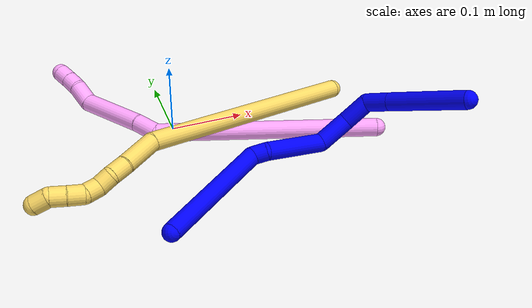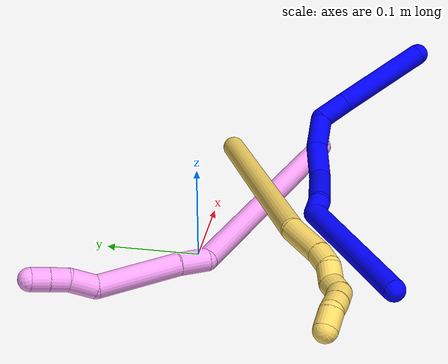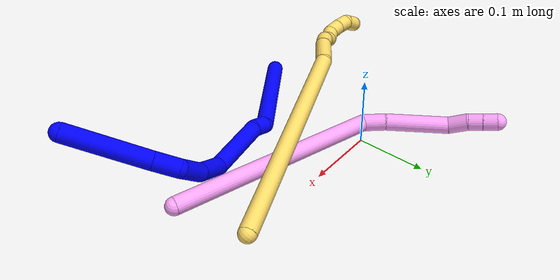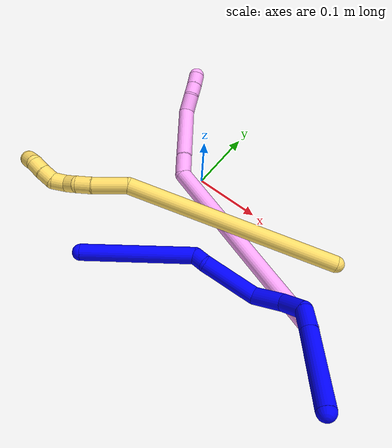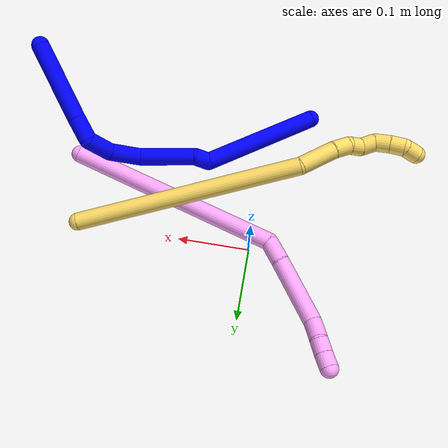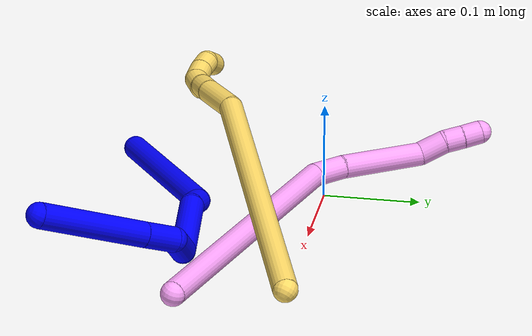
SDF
<sdf version="1.7">
 <world name="default">
  <model name="1">
   <static>0</static>
   <link name="1">
    <collision name="collision-cylinder-e_1_1_4">
     <pose>-0.009358 0.008161 -0.054589 -2.9932 -0.167947 1.69475</pose>
     <geometry><cylinder><radius>0.0125</radius><length>0.111966</length></cylinder></geometry>
     <surface>
      <friction><ode><mu>1.16</mu><mu2>1.16</mu2><slip1>0</slip1><slip2>0</slip2></ode></friction>
      <contact><ode><kp>1e+06</kp><kd>1</kd><max_vel>0</max_vel><min_depth>0.001</min_depth></ode></contact>
     </surface>
    </collision>
    <visual name="visual-cylinder-e_1_1_4">
     <pose>-0.009358 0.008161 -0.054589 -2.9932 -0.167947 1.69475</pose>
     <geometry><cylinder><radius>0.0125</radius><length>0.111966</length></cylinder></geometry>
     <material><ambient>0 0 1 1</ambient></material>
    </visual>
    <collision name="collision-cylinder-e_2_4_5">
     <pose>-0.022154 0.018804 -0.125964 -2.99474 -0.199869 1.87576</pose>
     <geometry><cylinder><radius>0.0125</radius><length>0.034627</length></cylinder></geometry>
     <surface>
      <friction><ode><mu>1.16</mu><mu2>1.16</mu2><slip1>0</slip1><slip2>0</slip2></ode></friction>
      <contact><ode><kp>1e+06</kp><kd>1</kd><max_vel>0</max_vel><min_depth>0.001</min_depth></ode></contact>
     </surface>
    </collision>
    <visual name="visual-cylinder-e_2_4_5">
     <pose>-0.022154 0.018804 -0.125964 -2.99474 -0.199869 1.87576</pose>
     <geometry><cylinder><radius>0.0125</radius><length>0.034627</length></cylinder></geometry>
     <material><ambient>0 0 1 1</ambient></material>
    </visual>
    <collision name="collision-cylinder-e_3_5_6">
     <pose>-0.036985 0.013668 -0.155525 2.60381 -0.653663 -1.77648</pose>
     <geometry><cylinder><radius>0.0125</radius><length>0.037474</length></cylinder></geometry>
     <surface>
      <friction><ode><mu>1.16</mu><mu2>1.16</mu2><slip1>0</slip1><slip2>0</slip2></ode></friction>
      <contact><ode><kp>1e+06</kp><kd>1</kd><max_vel>0</max_vel><min_depth>0.001</min_depth></ode></contact>
     </surface>
    </collision>
    <visual name="visual-cylinder-e_3_5_6">
     <pose>-0.036985 0.013668 -0.155525 2.60381 -0.653663 -1.77648</pose>
     <geometry><cylinder><radius>0.0125</radius><length>0.037474</length></cylinder></geometry>
     <material><ambient>0 0 1 1</ambient></material>
    </visual>
    <collision name="collision-cylinder-e_4_6_7">
     <pose>-0.067382 -0.001504 -0.178488 2.50366 -0.982278 -2.03529</pose>
     <geometry><cylinder><radius>0.0125</radius><length>0.045693</length></cylinder></geometry>
     <surface>
      <friction><ode><mu>1.16</mu><mu2>1.16</mu2><slip1>0</slip1><slip2>0</slip2></ode></friction>
      <contact><ode><kp>1e+06</kp><kd>1</kd><max_vel>0</max_vel><min_depth>0.001</min_depth></ode></contact>
     </surface>
    </collision>
    <visual name="visual-cylinder-e_4_6_7">
     <pose>-0.067382 -0.001504 -0.178488 2.50366 -0.982278 -2.03529</pose>
     <geometry><cylinder><radius>0.0125</radius><length>0.045693</length></cylinder></geometry>
     <material><ambient>0 0 1 1</ambient></material>
    </visual>
    <collision name="collision-cylinder-e_5_7_8">
     <pose>-0.124909 0.000939 -0.198651 -2.35508 -1.21945 2.0697</pose>
     <geometry><cylinder><radius>0.0125</radius><length>0.082062</length></cylinder></geometry>
     <surface>
      <friction><ode><mu>1.16</mu><mu2>1.16</mu2><slip1>0</slip1><slip2>0</slip2></ode></friction>
      <contact><ode><kp>1e+06</kp><kd>1</kd><max_vel>0</max_vel><min_depth>0.001</min_depth></ode></contact>
     </surface>
    </collision>
    <visual name="visual-cylinder-e_5_7_8">
     <pose>-0.124909 0.000939 -0.198651 -2.35508 -1.21945 2.0697</pose>
     <geometry><cylinder><radius>0.0125</radius><length>0.082062</length></cylinder></geometry>
     <material><ambient>0 0 1 1</ambient></material>
    </visual>
    <collision name="collision-cylinder-e_6_8_9">
     <pose>-0.171632 0.01152 -0.214552 -3.04332 -0.942571 2.94918</pose>
     <geometry><cylinder><radius>0.0125</radius><length>0.020268</length></cylinder></geometry>
     <surface>
      <friction><ode><mu>1.16</mu><mu2>1.16</mu2><slip1>0</slip1><slip2>0</slip2></ode></friction>
      <contact><ode><kp>1e+06</kp><kd>1</kd><max_vel>0</max_vel><min_depth>0.001</min_depth></ode></contact>
     </surface>
    </collision>
    <visual name="visual-cylinder-e_6_8_9">
     <pose>-0.171632 0.01152 -0.214552 -3.04332 -0.942571 2.94918</pose>
     <geometry><cylinder><radius>0.0125</radius><length>0.020268</length></cylinder></geometry>
     <material><ambient>0 0 1 1</ambient></material>
    </visual>
    <collision name="collision-cylinder-e_7_9_2">
     <pose>-0.261955 -0.003874 -0.213483 1.15809 -1.3615 -0.973971</pose>
     <geometry><cylinder><radius>0.0125</radius><length>0.16791</length></cylinder></geometry>
     <surface>
      <friction><ode><mu>1.16</mu><mu2>1.16</mu2><slip1>0</slip1><slip2>0</slip2></ode></friction>
      <contact><ode><kp>1e+06</kp><kd>1</kd><max_vel>0</max_vel><min_depth>0.001</min_depth></ode></contact>
     </surface>
    </collision>
    <visual name="visual-cylinder-e_7_9_2">
     <pose>-0.261955 -0.003874 -0.213483 1.15809 -1.3615 -0.973971</pose>
     <geometry><cylinder><radius>0.0125</radius><length>0.16791</length></cylinder></geometry>
     <material><ambient>0 0 1 1</ambient></material>
    </visual>
    <collision name="collision-sphere-2">
     <pose>-0.344077 -0.019852 -0.206487 0 -0 0</pose>
     <geometry><sphere><radius>0.0125</radius></sphere></geometry>
     <surface>
      <friction><ode><mu>1.16</mu><mu2>1.16</mu2><slip1>0</slip1><slip2>0</slip2></ode></friction>
      <contact><ode><kp>1e+06</kp><kd>1</kd><max_vel>0</max_vel><min_depth>0.001</min_depth></ode></contact>
     </surface>
    </collision>
    <visual name="visual-sphere-2">
     <pose>-0.344077 -0.019852 -0.206487 0 -0 0</pose>
     <geometry><sphere><radius>0.0125</radius></sphere></geometry>
     <material><ambient>0 0 1 1</ambient></material>
    </visual>
    <collision name="collision-sphere-9">
     <pose>-0.179832 0.012105 -0.22048 0 -0 0</pose>
     <geometry><sphere><radius>0.0125</radius></sphere></geometry>
     <surface>
      <friction><ode><mu>1.16</mu><mu2>1.16</mu2><slip1>0</slip1><slip2>0</slip2></ode></friction>
      <contact><ode><kp>1e+06</kp><kd>1</kd><max_vel>0</max_vel><min_depth>0.001</min_depth></ode></contact>
     </surface>
    </collision>
    <visual name="visual-sphere-9">
     <pose>-0.179832 0.012105 -0.22048 0 -0 0</pose>
     <geometry><sphere><radius>0.0125</radius></sphere></geometry>
     <material><ambient>0 0 1 1</ambient></material>
    </visual>
    <collision name="collision-sphere-4">
     <pose>-0.018716 0.016322 -0.109178 0 -0 0</pose>
     <geometry><sphere><radius>0.0125</radius></sphere></geometry>
     <surface>
      <friction><ode><mu>1.16</mu><mu2>1.16</mu2><slip1>0</slip1><slip2>0</slip2></ode></friction>
      <contact><ode><kp>1e+06</kp><kd>1</kd><max_vel>0</max_vel><min_depth>0.001</min_depth></ode></contact>
     </surface>
    </collision>
    <visual name="visual-sphere-4">
     <pose>-0.018716 0.016322 -0.109178 0 -0 0</pose>
     <geometry><sphere><radius>0.0125</radius></sphere></geometry>
     <material><ambient>0 0 1 1</ambient></material>
    </visual>
    <collision name="collision-sphere-1">
     <geometry><sphere><radius>0.0125</radius></sphere></geometry>
     <surface>
      <friction><ode><mu>1.16</mu><mu2>1.16</mu2><slip1>0</slip1><slip2>0</slip2></ode></friction>
      <contact><ode><kp>1e+06</kp><kd>1</kd><max_vel>0</max_vel><min_depth>0.001</min_depth></ode></contact>
     </surface>
    </collision>
    <visual name="visual-sphere-1">
     <geometry><sphere><radius>0.0125</radius></sphere></geometry>
     <material><ambient>0 0 1 1</ambient></material>
    </visual>
    <collision name="collision-sphere-8">
     <pose>-0.163433 0.010936 -0.208625 0 -0 0</pose>
     <geometry><sphere><radius>0.0125</radius></sphere></geometry>
     <surface>
      <friction><ode><mu>1.16</mu><mu2>1.16</mu2><slip1>0</slip1><slip2>0</slip2></ode></friction>
      <contact><ode><kp>1e+06</kp><kd>1</kd><max_vel>0</max_vel><min_depth>0.001</min_depth></ode></contact>
     </surface>
    </collision>
    <visual name="visual-sphere-8">
     <pose>-0.163433 0.010936 -0.208625 0 -0 0</pose>
     <geometry><sphere><radius>0.0125</radius></sphere></geometry>
     <material><ambient>0 0 1 1</ambient></material>
    </visual>
    <collision name="collision-sphere-5">
     <pose>-0.025591 0.021287 -0.14275 0 -0 0</pose>
     <geometry><sphere><radius>0.0125</radius></sphere></geometry>
     <surface>
      <friction><ode><mu>1.16</mu><mu2>1.16</mu2><slip1>0</slip1><slip2>0</slip2></ode></friction>
      <contact><ode><kp>1e+06</kp><kd>1</kd><max_vel>0</max_vel><min_depth>0.001</min_depth></ode></contact>
     </surface>
    </collision>
    <visual name="visual-sphere-5">
     <pose>-0.025591 0.021287 -0.14275 0 -0 0</pose>
     <geometry><sphere><radius>0.0125</radius></sphere></geometry>
     <material><ambient>0 0 1 1</ambient></material>
    </visual>
    <collision name="collision-sphere-6">
     <pose>-0.048379 0.006049 -0.1683 0 -0 0</pose>
     <geometry><sphere><radius>0.0125</radius></sphere></geometry>
     <surface>
      <friction><ode><mu>1.16</mu><mu2>1.16</mu2><slip1>0</slip1><slip2>0</slip2></ode></friction>
      <contact><ode><kp>1e+06</kp><kd>1</kd><max_vel>0</max_vel><min_depth>0.001</min_depth></ode></contact>
     </surface>
    </collision>
    <visual name="visual-sphere-6">
     <pose>-0.048379 0.006049 -0.1683 0 -0 0</pose>
     <geometry><sphere><radius>0.0125</radius></sphere></geometry>
     <material><ambient>0 0 1 1</ambient></material>
    </visual>
    <collision name="collision-sphere-7">
     <pose>-0.086384 -0.009057 -0.188677 0 -0 0</pose>
     <geometry><sphere><radius>0.0125</radius></sphere></geometry>
     <surface>
      <friction><ode><mu>1.16</mu><mu2>1.16</mu2><slip1>0</slip1><slip2>0</slip2></ode></friction>
      <contact><ode><kp>1e+06</kp><kd>1</kd><max_vel>0</max_vel><min_depth>0.001</min_depth></ode></contact>
     </surface>
    </collision>
    <visual name="visual-sphere-7">
     <pose>-0.086384 -0.009057 -0.188677 0 -0 0</pose>
     <geometry><sphere><radius>0.0125</radius></sphere></geometry>
     <material><ambient>0 0 1 1</ambient></material>
    </visual>
    <inertial>
     <pose>-0.127987 0.003337 -0.161908 0 -0 0</pose>
     <mass>0.5</mass>
     <inertia>
      <ixx>5.1e-05</ixx>
      <ixy>0</ixy>
      <ixz>0</ixz>
      <iyy>0.000523</iyy>
      <iyz>0</iyz>
      <izz>0.000508</izz>
     </inertia>
    </inertial>
   </link>
   <pose>0.330122 -0.209159 0.112748 1.01171 0.072037 0.451867</pose>
  </model>
  <model name="4">
   <static>0</static>
   <link name="4">
    <collision name="collision-cylinder-e_1_1_4">
     <pose>-0.142194 0.053579 0.007499 -1.43174 -1.20723 1.08037</pose>
     <geometry><cylinder><radius>0.0125</radius><length>0.304277</length></cylinder></geometry>
     <surface>
      <friction><ode><mu>1.16</mu><mu2>1.16</mu2><slip1>0</slip1><slip2>0</slip2></ode></friction>
      <contact><ode><kp>1e+06</kp><kd>1</kd><max_vel>0</max_vel><min_depth>0.001</min_depth></ode></contact>
     </surface>
    </collision>
    <visual name="visual-cylinder-e_1_1_4">
     <pose>-0.142194 0.053579 0.007499 -1.43174 -1.20723 1.08037</pose>
     <geometry><cylinder><radius>0.0125</radius><length>0.304277</length></cylinder></geometry>
     <material><ambient>1 0.65098 0.996078 1</ambient></material>
    </visual>
    <collision name="collision-cylinder-e_2_4_5">
     <pose>-0.293188 0.120252 0.019889 -1.21328 -0.561946 0.395317</pose>
     <geometry><cylinder><radius>0.0125</radius><length>0.033032</length></cylinder></geometry>
     <surface>
      <friction><ode><mu>1.16</mu><mu2>1.16</mu2><slip1>0</slip1><slip2>0</slip2></ode></friction>
      <contact><ode><kp>1e+06</kp><kd>1</kd><max_vel>0</max_vel><min_depth>0.001</min_depth></ode></contact>
     </surface>
    </collision>
    <visual name="visual-cylinder-e_2_4_5">
     <pose>-0.293188 0.120252 0.019889 -1.21328 -0.561946 0.395317</pose>
     <geometry><cylinder><radius>0.0125</radius><length>0.033032</length></cylinder></geometry>
     <material><ambient>1 0.65098 0.996078 1</ambient></material>
    </visual>
    <collision name="collision-cylinder-e_3_5_6">
     <pose>-0.326342 0.171804 0.033447 -1.34913 -0.553363 0.446607</pose>
     <geometry><cylinder><radius>0.0125</radius><length>0.092679</length></cylinder></geometry>
     <surface>
      <friction><ode><mu>1.16</mu><mu2>1.16</mu2><slip1>0</slip1><slip2>0</slip2></ode></friction>
      <contact><ode><kp>1e+06</kp><kd>1</kd><max_vel>0</max_vel><min_depth>0.001</min_depth></ode></contact>
     </surface>
    </collision>
    <visual name="visual-cylinder-e_3_5_6">
     <pose>-0.326342 0.171804 0.033447 -1.34913 -0.553363 0.446607</pose>
     <geometry><cylinder><radius>0.0125</radius><length>0.092679</length></cylinder></geometry>
     <material><ambient>1 0.65098 0.996078 1</ambient></material>
    </visual>
    <collision name="collision-cylinder-e_4_6_7">
     <pose>-0.355184 0.220983 0.05135 -0.859674 -0.307114 0.141668</pose>
     <geometry><cylinder><radius>0.0125</radius><length>0.029689</length></cylinder></geometry>
     <surface>
      <friction><ode><mu>1.16</mu><mu2>1.16</mu2><slip1>0</slip1><slip2>0</slip2></ode></friction>
      <contact><ode><kp>1e+06</kp><kd>1</kd><max_vel>0</max_vel><min_depth>0.001</min_depth></ode></contact>
     </surface>
    </collision>
    <visual name="visual-cylinder-e_4_6_7">
     <pose>-0.355184 0.220983 0.05135 -0.859674 -0.307114 0.141668</pose>
     <geometry><cylinder><radius>0.0125</radius><length>0.029689</length></cylinder></geometry>
     <material><ambient>1 0.65098 0.996078 1</ambient></material>
    </visual>
    <collision name="collision-cylinder-e_5_7_8">
     <pose>-0.363149 0.240262 0.064703 -1.1224 -0.35105 0.222056</pose>
     <geometry><cylinder><radius>0.0125</radius><length>0.020229</length></cylinder></geometry>
     <surface>
      <friction><ode><mu>1.16</mu><mu2>1.16</mu2><slip1>0</slip1><slip2>0</slip2></ode></friction>
      <contact><ode><kp>1e+06</kp><kd>1</kd><max_vel>0</max_vel><min_depth>0.001</min_depth></ode></contact>
     </surface>
    </collision>
    <visual name="visual-cylinder-e_5_7_8">
     <pose>-0.363149 0.240262 0.064703 -1.1224 -0.35105 0.222056</pose>
     <geometry><cylinder><radius>0.0125</radius><length>0.020229</length></cylinder></geometry>
     <material><ambient>1 0.65098 0.996078 1</ambient></material>
    </visual>
    <collision name="collision-cylinder-e_6_8_2">
     <pose>-0.370518 0.257131 0.072914 -1.11304 -0.397618 0.249373</pose>
     <geometry><cylinder><radius>0.0125</radius><length>0.020094</length></cylinder></geometry>
     <surface>
      <friction><ode><mu>1.16</mu><mu2>1.16</mu2><slip1>0</slip1><slip2>0</slip2></ode></friction>
      <contact><ode><kp>1e+06</kp><kd>1</kd><max_vel>0</max_vel><min_depth>0.001</min_depth></ode></contact>
     </surface>
    </collision>
    <visual name="visual-cylinder-e_6_8_2">
     <pose>-0.370518 0.257131 0.072914 -1.11304 -0.397618 0.249373</pose>
     <geometry><cylinder><radius>0.0125</radius><length>0.020094</length></cylinder></geometry>
     <material><ambient>1 0.65098 0.996078 1</ambient></material>
    </visual>
    <collision name="collision-sphere-2">
     <pose>-0.374409 0.26544 0.077008 0 -0 0</pose>
     <geometry><sphere><radius>0.0125</radius></sphere></geometry>
     <surface>
      <friction><ode><mu>1.16</mu><mu2>1.16</mu2><slip1>0</slip1><slip2>0</slip2></ode></friction>
      <contact><ode><kp>1e+06</kp><kd>1</kd><max_vel>0</max_vel><min_depth>0.001</min_depth></ode></contact>
     </surface>
    </collision>
    <visual name="visual-sphere-2">
     <pose>-0.374409 0.26544 0.077008 0 -0 0</pose>
     <geometry><sphere><radius>0.0125</radius></sphere></geometry>
     <material><ambient>1 0.65098 0.996078 1</ambient></material>
    </visual>
    <collision name="collision-sphere-4">
     <pose>-0.284388 0.107159 0.014998 0 -0 0</pose>
     <geometry><sphere><radius>0.0125</radius></sphere></geometry>
     <surface>
      <friction><ode><mu>1.16</mu><mu2>1.16</mu2><slip1>0</slip1><slip2>0</slip2></ode></friction>
      <contact><ode><kp>1e+06</kp><kd>1</kd><max_vel>0</max_vel><min_depth>0.001</min_depth></ode></contact>
     </surface>
    </collision>
    <visual name="visual-sphere-4">
     <pose>-0.284388 0.107159 0.014998 0 -0 0</pose>
     <geometry><sphere><radius>0.0125</radius></sphere></geometry>
     <material><ambient>1 0.65098 0.996078 1</ambient></material>
    </visual>
    <collision name="collision-sphere-1">
     <geometry><sphere><radius>0.0125</radius></sphere></geometry>
     <surface>
      <friction><ode><mu>1.16</mu><mu2>1.16</mu2><slip1>0</slip1><slip2>0</slip2></ode></friction>
      <contact><ode><kp>1e+06</kp><kd>1</kd><max_vel>0</max_vel><min_depth>0.001</min_depth></ode></contact>
     </surface>
    </collision>
    <visual name="visual-sphere-1">
     <geometry><sphere><radius>0.0125</radius></sphere></geometry>
     <material><ambient>1 0.65098 0.996078 1</ambient></material>
    </visual>
    <collision name="collision-sphere-8">
     <pose>-0.366628 0.248821 0.06882 0 -0 0</pose>
     <geometry><sphere><radius>0.0125</radius></sphere></geometry>
     <surface>
      <friction><ode><mu>1.16</mu><mu2>1.16</mu2><slip1>0</slip1><slip2>0</slip2></ode></friction>
      <contact><ode><kp>1e+06</kp><kd>1</kd><max_vel>0</max_vel><min_depth>0.001</min_depth></ode></contact>
     </surface>
    </collision>
    <visual name="visual-sphere-8">
     <pose>-0.366628 0.248821 0.06882 0 -0 0</pose>
     <geometry><sphere><radius>0.0125</radius></sphere></geometry>
     <material><ambient>1 0.65098 0.996078 1</ambient></material>
    </visual>
    <collision name="collision-sphere-5">
     <pose>-0.301988 0.133344 0.02478 0 -0 0</pose>
     <geometry><sphere><radius>0.0125</radius></sphere></geometry>
     <surface>
      <friction><ode><mu>1.16</mu><mu2>1.16</mu2><slip1>0</slip1><slip2>0</slip2></ode></friction>
      <contact><ode><kp>1e+06</kp><kd>1</kd><max_vel>0</max_vel><min_depth>0.001</min_depth></ode></contact>
     </surface>
    </collision>
    <visual name="visual-sphere-5">
     <pose>-0.301988 0.133344 0.02478 0 -0 0</pose>
     <geometry><sphere><radius>0.0125</radius></sphere></geometry>
     <material><ambient>1 0.65098 0.996078 1</ambient></material>
    </visual>
    <collision name="collision-sphere-6">
     <pose>-0.350696 0.210263 0.042115 0 -0 0</pose>
     <geometry><sphere><radius>0.0125</radius></sphere></geometry>
     <surface>
      <friction><ode><mu>1.16</mu><mu2>1.16</mu2><slip1>0</slip1><slip2>0</slip2></ode></friction>
      <contact><ode><kp>1e+06</kp><kd>1</kd><max_vel>0</max_vel><min_depth>0.001</min_depth></ode></contact>
     </surface>
    </collision>
    <visual name="visual-sphere-6">
     <pose>-0.350696 0.210263 0.042115 0 -0 0</pose>
     <geometry><sphere><radius>0.0125</radius></sphere></geometry>
     <material><ambient>1 0.65098 0.996078 1</ambient></material>
    </visual>
    <collision name="collision-sphere-7">
     <pose>-0.359671 0.231704 0.060585 0 -0 0</pose>
     <geometry><sphere><radius>0.0125</radius></sphere></geometry>
     <surface>
      <friction><ode><mu>1.16</mu><mu2>1.16</mu2><slip1>0</slip1><slip2>0</slip2></ode></friction>
      <contact><ode><kp>1e+06</kp><kd>1</kd><max_vel>0</max_vel><min_depth>0.001</min_depth></ode></contact>
     </surface>
    </collision>
    <visual name="visual-sphere-7">
     <pose>-0.359671 0.231704 0.060585 0 -0 0</pose>
     <geometry><sphere><radius>0.0125</radius></sphere></geometry>
     <material><ambient>1 0.65098 0.996078 1</ambient></material>
    </visual>
    <inertial>
     <pose>-0.217065 0.105571 0.020674 0 -0 0</pose>
     <mass>0.5</mass>
     <inertia>
      <ixx>0.001197</ixx>
      <ixy>0</ixy>
      <ixz>0</ixz>
      <iyy>0.002905</iyy>
      <iyz>0</iyz>
      <izz>0.001355</izz>
     </inertia>
    </inertial>
   </link>
   <pose>0.265081 -0.100851 0.009911 -0.292366 0.058056 0.071445</pose>
  </model>
  <model name="5">
   <static>0</static>
   <link name="5">
    <collision name="collision-cylinder-e_1_1_4">
     <pose>-0.116917 -0.033711 0.104275 0.312686 -0.81774 -0.136386</pose>
     <geometry><cylinder><radius>0.0125</radius><length>0.320494</length></cylinder></geometry>
     <surface>
      <friction><ode><mu>1.16</mu><mu2>1.16</mu2><slip1>0</slip1><slip2>0</slip2></ode></friction>
      <contact><ode><kp>1e+06</kp><kd>1</kd><max_vel>0</max_vel><min_depth>0.001</min_depth></ode></contact>
     </surface>
    </collision>
    <visual name="visual-cylinder-e_1_1_4">
     <pose>-0.116917 -0.033711 0.104275 0.312686 -0.81774 -0.136386</pose>
     <geometry><cylinder><radius>0.0125</radius><length>0.320494</length></cylinder></geometry>
     <material><ambient>1 0.858824 0.4 1</ambient></material>
    </visual>
    <collision name="collision-cylinder-e_2_4_5">
     <pose>-0.256875 -0.076245 0.217775 0.763107 -1.06486 -0.464258</pose>
     <geometry><cylinder><radius>0.0125</radius><length>0.052683</length></cylinder></geometry>
     <surface>
      <friction><ode><mu>1.16</mu><mu2>1.16</mu2><slip1>0</slip1><slip2>0</slip2></ode></friction>
      <contact><ode><kp>1e+06</kp><kd>1</kd><max_vel>0</max_vel><min_depth>0.001</min_depth></ode></contact>
     </surface>
    </collision>
    <visual name="visual-cylinder-e_2_4_5">
     <pose>-0.256875 -0.076245 0.217775 0.763107 -1.06486 -0.464258</pose>
     <geometry><cylinder><radius>0.0125</radius><length>0.052683</length></cylinder></geometry>
     <material><ambient>1 0.858824 0.4 1</ambient></material>
    </visual>
    <collision name="collision-cylinder-e_3_5_6">
     <pose>-0.290431 -0.087263 0.231404 0.462209 -1.13318 -0.297186</pose>
     <geometry><cylinder><radius>0.0125</radius><length>0.023217</length></cylinder></geometry>
     <surface>
      <friction><ode><mu>1.16</mu><mu2>1.16</mu2><slip1>0</slip1><slip2>0</slip2></ode></friction>
      <contact><ode><kp>1e+06</kp><kd>1</kd><max_vel>0</max_vel><min_depth>0.001</min_depth></ode></contact>
     </surface>
    </collision>
    <visual name="visual-cylinder-e_3_5_6">
     <pose>-0.290431 -0.087263 0.231404 0.462209 -1.13318 -0.297186</pose>
     <geometry><cylinder><radius>0.0125</radius><length>0.023217</length></cylinder></geometry>
     <material><ambient>1 0.858824 0.4 1</ambient></material>
    </visual>
    <collision name="collision-cylinder-e_4_6_7">
     <pose>-0.31044 -0.087231 0.23807 -0.777038 -1.24814 0.573255</pose>
     <geometry><cylinder><radius>0.0125</radius><length>0.020022</length></cylinder></geometry>
     <surface>
      <friction><ode><mu>1.16</mu><mu2>1.16</mu2><slip1>0</slip1><slip2>0</slip2></ode></friction>
      <contact><ode><kp>1e+06</kp><kd>1</kd><max_vel>0</max_vel><min_depth>0.001</min_depth></ode></contact>
     </surface>
    </collision>
    <visual name="visual-cylinder-e_4_6_7">
     <pose>-0.31044 -0.087231 0.23807 -0.777038 -1.24814 0.573255</pose>
     <geometry><cylinder><radius>0.0125</radius><length>0.020022</length></cylinder></geometry>
     <material><ambient>1 0.858824 0.4 1</ambient></material>
    </visual>
    <collision name="collision-cylinder-e_5_7_8">
     <pose>-0.328664 -0.087655 0.245825 0.449649 -0.961066 -0.237308</pose>
     <geometry><cylinder><radius>0.0125</radius><length>0.021295</length></cylinder></geometry>
     <surface>
      <friction><ode><mu>1.16</mu><mu2>1.16</mu2><slip1>0</slip1><slip2>0</slip2></ode></friction>
      <contact><ode><kp>1e+06</kp><kd>1</kd><max_vel>0</max_vel><min_depth>0.001</min_depth></ode></contact>
     </surface>
    </collision>
    <visual name="visual-cylinder-e_5_7_8">
     <pose>-0.328664 -0.087655 0.245825 0.449649 -0.961066 -0.237308</pose>
     <geometry><cylinder><radius>0.0125</radius><length>0.021295</length></cylinder></geometry>
     <material><ambient>1 0.858824 0.4 1</ambient></material>
    </visual>
    <collision name="collision-cylinder-e_6_8_9">
     <pose>-0.34377 -0.08889 0.259651 -0.168134 -0.646307 0.056425</pose>
     <geometry><cylinder><radius>0.0125</radius><length>0.02118</length></cylinder></geometry>
     <surface>
      <friction><ode><mu>1.16</mu><mu2>1.16</mu2><slip1>0</slip1><slip2>0</slip2></ode></friction>
      <contact><ode><kp>1e+06</kp><kd>1</kd><max_vel>0</max_vel><min_depth>0.001</min_depth></ode></contact>
     </surface>
    </collision>
    <visual name="visual-cylinder-e_6_8_9">
     <pose>-0.34377 -0.08889 0.259651 -0.168134 -0.646307 0.056425</pose>
     <geometry><cylinder><radius>0.0125</radius><length>0.02118</length></cylinder></geometry>
     <material><ambient>1 0.858824 0.4 1</ambient></material>
    </visual>
    <collision name="collision-cylinder-e_7_9_10">
     <pose>-0.35599 -0.085091 0.275897 -0.292792 -0.61539 0.093648</pose>
     <geometry><cylinder><radius>0.0125</radius><length>0.020239</length></cylinder></geometry>
     <surface>
      <friction><ode><mu>1.16</mu><mu2>1.16</mu2><slip1>0</slip1><slip2>0</slip2></ode></friction>
      <contact><ode><kp>1e+06</kp><kd>1</kd><max_vel>0</max_vel><min_depth>0.001</min_depth></ode></contact>
     </surface>
    </collision>
    <visual name="visual-cylinder-e_7_9_10">
     <pose>-0.35599 -0.085091 0.275897 -0.292792 -0.61539 0.093648</pose>
     <geometry><cylinder><radius>0.0125</radius><length>0.020239</length></cylinder></geometry>
     <material><ambient>1 0.858824 0.4 1</ambient></material>
    </visual>
    <collision name="collision-cylinder-e_8_10_2">
     <pose>-0.369791 -0.077027 0.287453 -1.00026 -0.867642 0.495894</pose>
     <geometry><cylinder><radius>0.0125</radius><length>0.020869</length></cylinder></geometry>
     <surface>
      <friction><ode><mu>1.16</mu><mu2>1.16</mu2><slip1>0</slip1><slip2>0</slip2></ode></friction>
      <contact><ode><kp>1e+06</kp><kd>1</kd><max_vel>0</max_vel><min_depth>0.001</min_depth></ode></contact>
     </surface>
    </collision>
    <visual name="visual-cylinder-e_8_10_2">
     <pose>-0.369791 -0.077027 0.287453 -1.00026 -0.867642 0.495894</pose>
     <geometry><cylinder><radius>0.0125</radius><length>0.020869</length></cylinder></geometry>
     <material><ambient>1 0.858824 0.4 1</ambient></material>
    </visual>
    <collision name="collision-sphere-2">
     <pose>-0.377751 -0.071348 0.291097 0 -0 0</pose>
     <geometry><sphere><radius>0.0125</radius></sphere></geometry>
     <surface>
      <friction><ode><mu>1.16</mu><mu2>1.16</mu2><slip1>0</slip1><slip2>0</slip2></ode></friction>
      <contact><ode><kp>1e+06</kp><kd>1</kd><max_vel>0</max_vel><min_depth>0.001</min_depth></ode></contact>
     </surface>
    </collision>
    <visual name="visual-sphere-2">
     <pose>-0.377751 -0.071348 0.291097 0 -0 0</pose>
     <geometry><sphere><radius>0.0125</radius></sphere></geometry>
     <material><ambient>1 0.858824 0.4 1</ambient></material>
    </visual>
    <collision name="collision-sphere-10">
     <pose>-0.361832 -0.082706 0.283809 0 -0 0</pose>
     <geometry><sphere><radius>0.0125</radius></sphere></geometry>
     <surface>
      <friction><ode><mu>1.16</mu><mu2>1.16</mu2><slip1>0</slip1><slip2>0</slip2></ode></friction>
      <contact><ode><kp>1e+06</kp><kd>1</kd><max_vel>0</max_vel><min_depth>0.001</min_depth></ode></contact>
     </surface>
    </collision>
    <visual name="visual-sphere-10">
     <pose>-0.361832 -0.082706 0.283809 0 -0 0</pose>
     <geometry><sphere><radius>0.0125</radius></sphere></geometry>
     <material><ambient>1 0.858824 0.4 1</ambient></material>
    </visual>
    <collision name="collision-sphere-9">
     <pose>-0.350148 -0.087475 0.267986 0 -0 0</pose>
     <geometry><sphere><radius>0.0125</radius></sphere></geometry>
     <surface>
      <friction><ode><mu>1.16</mu><mu2>1.16</mu2><slip1>0</slip1><slip2>0</slip2></ode></friction>
      <contact><ode><kp>1e+06</kp><kd>1</kd><max_vel>0</max_vel><min_depth>0.001</min_depth></ode></contact>
     </surface>
    </collision>
    <visual name="visual-sphere-9">
     <pose>-0.350148 -0.087475 0.267986 0 -0 0</pose>
     <geometry><sphere><radius>0.0125</radius></sphere></geometry>
     <material><ambient>1 0.858824 0.4 1</ambient></material>
    </visual>
    <collision name="collision-sphere-4">
     <pose>-0.233833 -0.067422 0.208549 0 -0 0</pose>
     <geometry><sphere><radius>0.0125</radius></sphere></geometry>
     <surface>
      <friction><ode><mu>1.16</mu><mu2>1.16</mu2><slip1>0</slip1><slip2>0</slip2></ode></friction>
      <contact><ode><kp>1e+06</kp><kd>1</kd><max_vel>0</max_vel><min_depth>0.001</min_depth></ode></contact>
     </surface>
    </collision>
    <visual name="visual-sphere-4">
     <pose>-0.233833 -0.067422 0.208549 0 -0 0</pose>
     <geometry><sphere><radius>0.0125</radius></sphere></geometry>
     <material><ambient>1 0.858824 0.4 1</ambient></material>
    </visual>
    <collision name="collision-sphere-1">
     <geometry><sphere><radius>0.0125</radius></sphere></geometry>
     <surface>
      <friction><ode><mu>1.16</mu><mu2>1.16</mu2><slip1>0</slip1><slip2>0</slip2></ode></friction>
      <contact><ode><kp>1e+06</kp><kd>1</kd><max_vel>0</max_vel><min_depth>0.001</min_depth></ode></contact>
     </surface>
    </collision>
    <visual name="visual-sphere-1">
     <geometry><sphere><radius>0.0125</radius></sphere></geometry>
     <material><ambient>1 0.858824 0.4 1</ambient></material>
    </visual>
    <collision name="collision-sphere-8">
     <pose>-0.337392 -0.090305 0.251316 0 -0 0</pose>
     <geometry><sphere><radius>0.0125</radius></sphere></geometry>
     <surface>
      <friction><ode><mu>1.16</mu><mu2>1.16</mu2><slip1>0</slip1><slip2>0</slip2></ode></friction>
      <contact><ode><kp>1e+06</kp><kd>1</kd><max_vel>0</max_vel><min_depth>0.001</min_depth></ode></contact>
     </surface>
    </collision>
    <visual name="visual-sphere-8">
     <pose>-0.337392 -0.090305 0.251316 0 -0 0</pose>
     <geometry><sphere><radius>0.0125</radius></sphere></geometry>
     <material><ambient>1 0.858824 0.4 1</ambient></material>
    </visual>
    <collision name="collision-sphere-5">
     <pose>-0.279916 -0.085069 0.227001 0 -0 0</pose>
     <geometry><sphere><radius>0.0125</radius></sphere></geometry>
     <surface>
      <friction><ode><mu>1.16</mu><mu2>1.16</mu2><slip1>0</slip1><slip2>0</slip2></ode></friction>
      <contact><ode><kp>1e+06</kp><kd>1</kd><max_vel>0</max_vel><min_depth>0.001</min_depth></ode></contact>
     </surface>
    </collision>
    <visual name="visual-sphere-5">
     <pose>-0.279916 -0.085069 0.227001 0 -0 0</pose>
     <geometry><sphere><radius>0.0125</radius></sphere></geometry>
     <material><ambient>1 0.858824 0.4 1</ambient></material>
    </visual>
    <collision name="collision-sphere-6">
     <pose>-0.300946 -0.089456 0.235807 0 -0 0</pose>
     <geometry><sphere><radius>0.0125</radius></sphere></geometry>
     <surface>
      <friction><ode><mu>1.16</mu><mu2>1.16</mu2><slip1>0</slip1><slip2>0</slip2></ode></friction>
      <contact><ode><kp>1e+06</kp><kd>1</kd><max_vel>0</max_vel><min_depth>0.001</min_depth></ode></contact>
     </surface>
    </collision>
    <visual name="visual-sphere-6">
     <pose>-0.300946 -0.089456 0.235807 0 -0 0</pose>
     <geometry><sphere><radius>0.0125</radius></sphere></geometry>
     <material><ambient>1 0.858824 0.4 1</ambient></material>
    </visual>
    <collision name="collision-sphere-7">
     <pose>-0.319935 -0.085005 0.240334 0 -0 0</pose>
     <geometry><sphere><radius>0.0125</radius></sphere></geometry>
     <surface>
      <friction><ode><mu>1.16</mu><mu2>1.16</mu2><slip1>0</slip1><slip2>0</slip2></ode></friction>
      <contact><ode><kp>1e+06</kp><kd>1</kd><max_vel>0</max_vel><min_depth>0.001</min_depth></ode></contact>
     </surface>
    </collision>
    <visual name="visual-sphere-7">
     <pose>-0.319935 -0.085005 0.240334 0 -0 0</pose>
     <geometry><sphere><radius>0.0125</radius></sphere></geometry>
     <material><ambient>1 0.858824 0.4 1</ambient></material>
    </visual>
    <inertial>
     <pose>-0.18633 -0.051345 0.154698 0 -0 0</pose>
     <mass>0.5</mass>
     <inertia><ixx>0.00159</ixx><ixy>0</ixy><ixz>0</ixz><iyy>0.00244</iyy><iyz>0</iyz><izz>0.002637</izz></inertia>
    </inertial>
   </link>
   <pose>0.242315 0.002892 0.012231 -0.712016 -0.526718 0.636019</pose>
  </model>
 </world>
</sdf>
